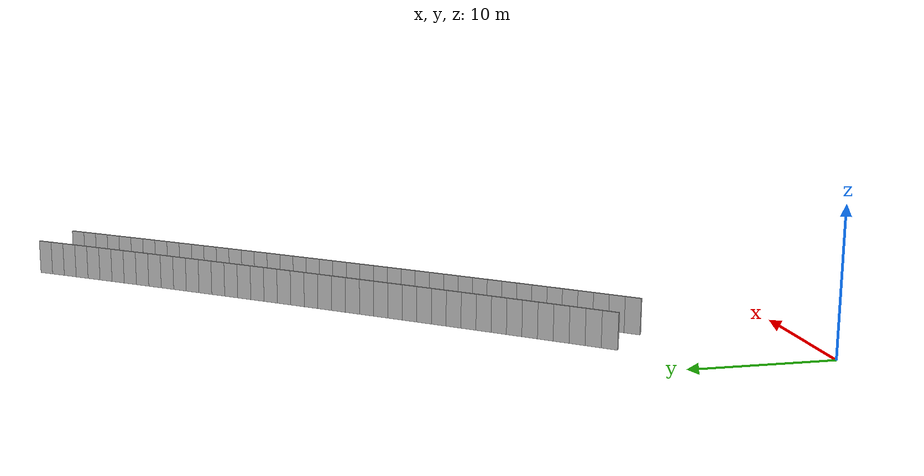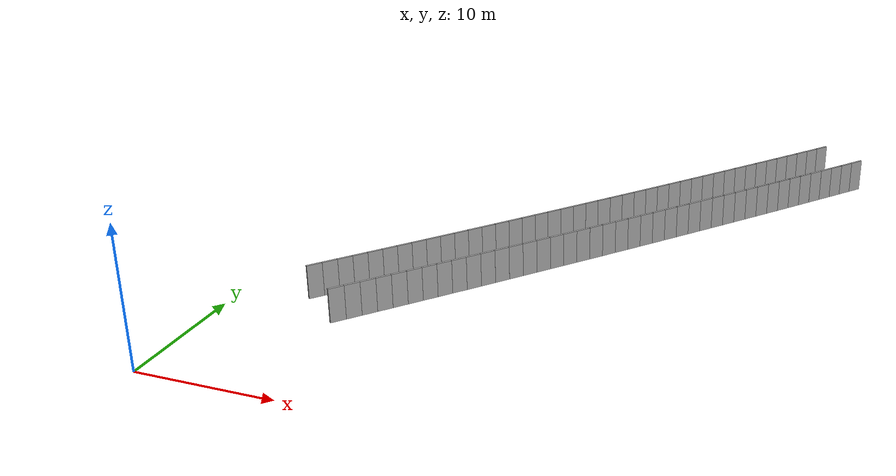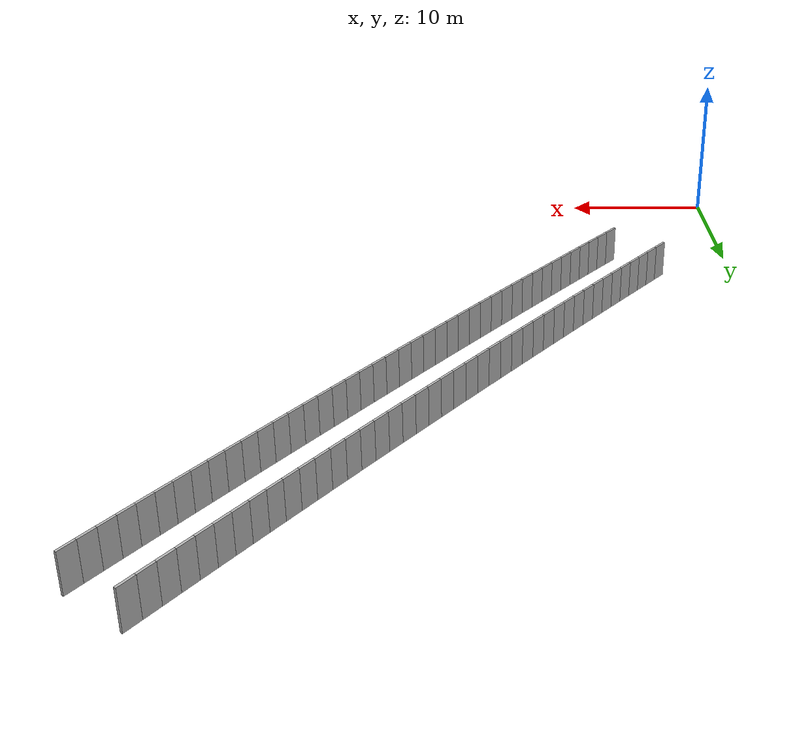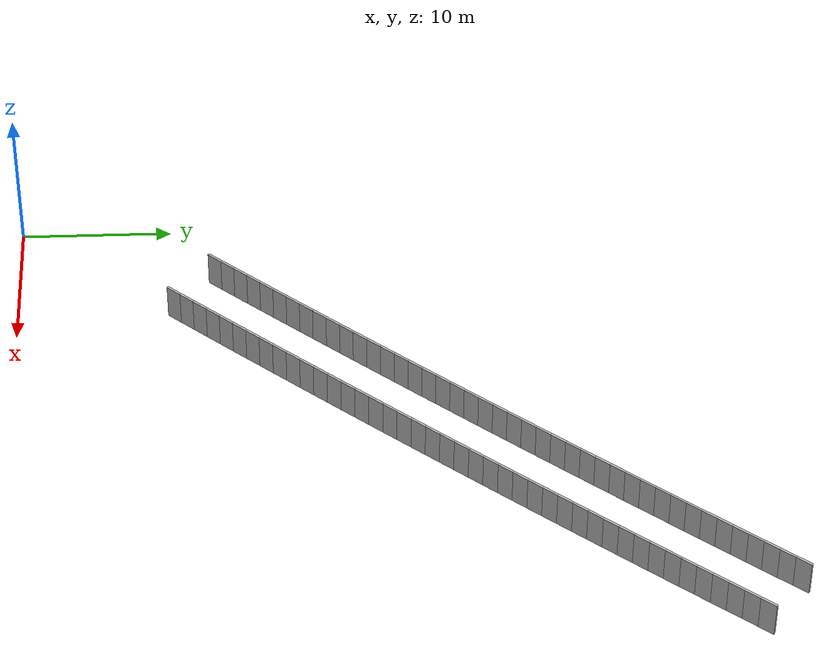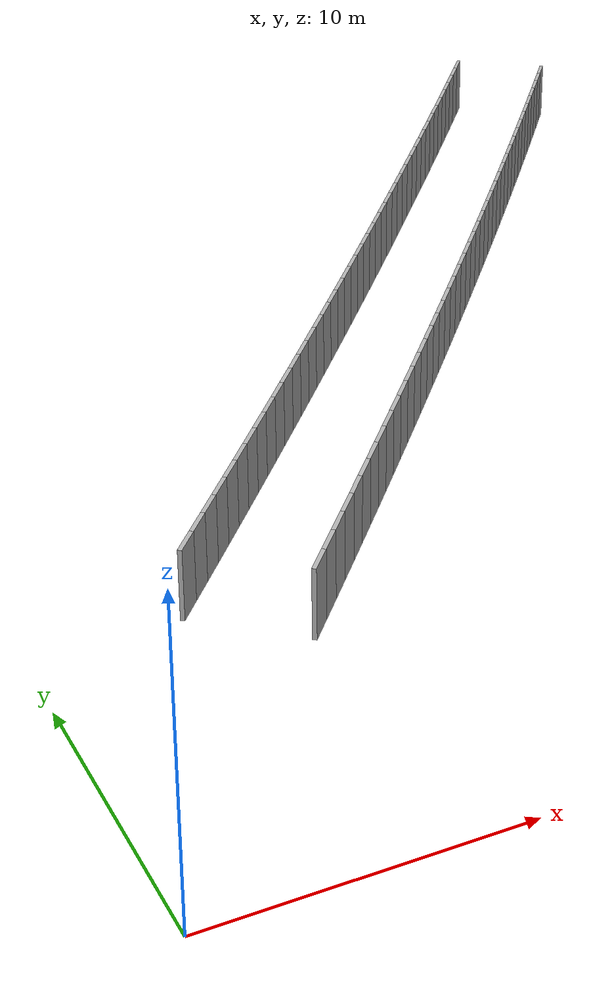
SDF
<?xml version="1.0" ?>
<sdf version="1.6">
  <model name="sps_4212">
    <pose frame="">0 0 0 0 -0 0</pose>
    <static>1</static>
    <self_collide>0</self_collide>
    <allow_auto_disable>0</allow_auto_disable>
    <link name="Wall7227">
      <kinematic>0</kinematic>
      <gravity>1</gravity>
      <self_collide>0</self_collide>
      <collision name="collision">
        <geometry>
          <box>
            <size>1.12621 0.15 2.5</size>
          </box>
        </geometry>
        <pose frame="">0 0 0 0 -0 0</pose>
      </collision>
      <visual name="visual">
        <geometry>
          <box>
            <size>1.12621 0.15 2.5</size>
          </box>
        </geometry>
        <pose frame="">0 0 0 0 -0 0</pose>
        <cast_shadows>1</cast_shadows>
        <transparency>0.0</transparency>
      </visual>
      <pose frame="">8.50967 10.4473 1.25 0 -0 0.868883</pose>
    </link>
    <link name="Wall7228">
      <kinematic>0</kinematic>
      <gravity>1</gravity>
      <self_collide>0</self_collide>
      <collision name="collision">
        <geometry>
          <box>
            <size>1.12638 0.15 2.5</size>
          </box>
        </geometry>
        <pose frame="">0 0 0 0 -0 0</pose>
      </collision>
      <visual name="visual">
        <geometry>
          <box>
            <size>1.12638 0.15 2.5</size>
          </box>
        </geometry>
        <pose frame="">0 0 0 0 -0 0</pose>
        <cast_shadows>1</cast_shadows>
        <transparency>0.0</transparency>
      </visual>
      <pose frame="">9.23635 11.3078 1.25 0 -0 0.87014</pose>
    </link>
    <link name="Wall7229">
      <kinematic>0</kinematic>
      <gravity>1</gravity>
      <self_collide>0</self_collide>
      <collision name="collision">
        <geometry>
          <box>
            <size>1.12635 0.15 2.5</size>
          </box>
        </geometry>
        <pose frame="">0 0 0 0 -0 0</pose>
      </collision>
      <visual name="visual">
        <geometry>
          <box>
            <size>1.12635 0.15 2.5</size>
          </box>
        </geometry>
        <pose frame="">0 0 0 0 -0 0</pose>
        <cast_shadows>1</cast_shadows>
        <transparency>0.0</transparency>
      </visual>
      <pose frame="">9.96206 12.1692 1.25 0 -0 0.871257</pose>
    </link>
    <link name="Wall7230">
      <kinematic>0</kinematic>
      <gravity>1</gravity>
      <self_collide>0</self_collide>
      <collision name="collision">
        <geometry>
          <box>
            <size>1.12629 0.15 2.5</size>
          </box>
        </geometry>
        <pose frame="">0 0 0 0 -0 0</pose>
      </collision>
      <visual name="visual">
        <geometry>
          <box>
            <size>1.12629 0.15 2.5</size>
          </box>
        </geometry>
        <pose frame="">0 0 0 0 -0 0</pose>
        <cast_shadows>1</cast_shadows>
        <transparency>0.0</transparency>
      </visual>
      <pose frame="">10.6868 13.0314 1.25 0 -0 0.872415</pose>
    </link>
    <link name="Wall7231">
      <kinematic>0</kinematic>
      <gravity>1</gravity>
      <self_collide>0</self_collide>
      <collision name="collision">
        <geometry>
          <box>
            <size>1.1263 0.15 2.5</size>
          </box>
        </geometry>
        <pose frame="">0 0 0 0 -0 0</pose>
      </collision>
      <visual name="visual">
        <geometry>
          <box>
            <size>1.1263 0.15 2.5</size>
          </box>
        </geometry>
        <pose frame="">0 0 0 0 -0 0</pose>
        <cast_shadows>1</cast_shadows>
        <transparency>0.0</transparency>
      </visual>
      <pose frame="">11.4104 13.8945 1.25 0 -0 0.873761</pose>
    </link>
    <link name="Wall7232">
      <kinematic>0</kinematic>
      <gravity>1</gravity>
      <self_collide>0</self_collide>
      <collision name="collision">
        <geometry>
          <box>
            <size>1.12665 0.15 2.5</size>
          </box>
        </geometry>
        <pose frame="">0 0 0 0 -0 0</pose>
      </collision>
      <visual name="visual">
        <geometry>
          <box>
            <size>1.12665 0.15 2.5</size>
          </box>
        </geometry>
        <pose frame="">0 0 0 0 -0 0</pose>
        <cast_shadows>1</cast_shadows>
        <transparency>0.0</transparency>
      </visual>
      <pose frame="">12.1331 14.7586 1.25 0 -0 0.874733</pose>
    </link>
    <link name="Wall7233">
      <kinematic>0</kinematic>
      <gravity>1</gravity>
      <self_collide>0</self_collide>
      <collision name="collision">
        <geometry>
          <box>
            <size>1.12637 0.15 2.5</size>
          </box>
        </geometry>
        <pose frame="">0 0 0 0 -0 0</pose>
      </collision>
      <visual name="visual">
        <geometry>
          <box>
            <size>1.12637 0.15 2.5</size>
          </box>
        </geometry>
        <pose frame="">0 0 0 0 -0 0</pose>
        <cast_shadows>1</cast_shadows>
        <transparency>0.0</transparency>
      </visual>
      <pose frame="">12.8548 15.6236 1.25 0 -0 0.876218</pose>
    </link>
    <link name="Wall7234">
      <kinematic>0</kinematic>
      <gravity>1</gravity>
      <self_collide>0</self_collide>
      <collision name="collision">
        <geometry>
          <box>
            <size>1.12625 0.15 2.5</size>
          </box>
        </geometry>
        <pose frame="">0 0 0 0 -0 0</pose>
      </collision>
      <visual name="visual">
        <geometry>
          <box>
            <size>1.12625 0.15 2.5</size>
          </box>
        </geometry>
        <pose frame="">0 0 0 0 -0 0</pose>
        <cast_shadows>1</cast_shadows>
        <transparency>0.0</transparency>
      </visual>
      <pose frame="">13.5752 16.4893 1.25 0 -0 0.877189</pose>
    </link>
    <link name="Wall7235">
      <kinematic>0</kinematic>
      <gravity>1</gravity>
      <self_collide>0</self_collide>
      <collision name="collision">
        <geometry>
          <box>
            <size>1.12623 0.15 2.5</size>
          </box>
        </geometry>
        <pose frame="">0 0 0 0 -0 0</pose>
      </collision>
      <visual name="visual">
        <geometry>
          <box>
            <size>1.12623 0.15 2.5</size>
          </box>
        </geometry>
        <pose frame="">0 0 0 0 -0 0</pose>
        <cast_shadows>1</cast_shadows>
        <transparency>0.0</transparency>
      </visual>
      <pose frame="">14.2947 17.3558 1.25 0 -0 0.878577</pose>
    </link>
    <link name="Wall7236">
      <kinematic>0</kinematic>
      <gravity>1</gravity>
      <self_collide>0</self_collide>
      <collision name="collision">
        <geometry>
          <box>
            <size>1.12629 0.15 2.5</size>
          </box>
        </geometry>
        <pose frame="">0 0 0 0 -0 0</pose>
      </collision>
      <visual name="visual">
        <geometry>
          <box>
            <size>1.12629 0.15 2.5</size>
          </box>
        </geometry>
        <pose frame="">0 0 0 0 -0 0</pose>
        <cast_shadows>1</cast_shadows>
        <transparency>0.0</transparency>
      </visual>
      <pose frame="">15.0131 18.2232 1.25 0 -0 0.879611</pose>
    </link>
    <link name="Wall7237">
      <kinematic>0</kinematic>
      <gravity>1</gravity>
      <self_collide>0</self_collide>
      <collision name="collision">
        <geometry>
          <box>
            <size>1.12631 0.15 2.5</size>
          </box>
        </geometry>
        <pose frame="">0 0 0 0 -0 0</pose>
      </collision>
      <visual name="visual">
        <geometry>
          <box>
            <size>1.12631 0.15 2.5</size>
          </box>
        </geometry>
        <pose frame="">0 0 0 0 -0 0</pose>
        <cast_shadows>1</cast_shadows>
        <transparency>0.0</transparency>
      </visual>
      <pose frame="">15.7304 19.0915 1.25 0 -0 0.880957</pose>
    </link>
    <link name="Wall7238">
      <kinematic>0</kinematic>
      <gravity>1</gravity>
      <self_collide>0</self_collide>
      <collision name="collision">
        <geometry>
          <box>
            <size>1.12646 0.15 2.5</size>
          </box>
        </geometry>
        <pose frame="">0 0 0 0 -0 0</pose>
      </collision>
      <visual name="visual">
        <geometry>
          <box>
            <size>1.12646 0.15 2.5</size>
          </box>
        </geometry>
        <pose frame="">0 0 0 0 -0 0</pose>
        <cast_shadows>1</cast_shadows>
        <transparency>0.0</transparency>
      </visual>
      <pose frame="">16.4468 19.9607 1.25 0 -0 0.881983</pose>
    </link>
    <link name="Wall7239">
      <kinematic>0</kinematic>
      <gravity>1</gravity>
      <self_collide>0</self_collide>
      <collision name="collision">
        <geometry>
          <box>
            <size>1.12615 0.15 2.5</size>
          </box>
        </geometry>
        <pose frame="">0 0 0 0 -0 0</pose>
      </collision>
      <visual name="visual">
        <geometry>
          <box>
            <size>1.12615 0.15 2.5</size>
          </box>
        </geometry>
        <pose frame="">0 0 0 0 -0 0</pose>
        <cast_shadows>1</cast_shadows>
        <transparency>0.0</transparency>
      </visual>
      <pose frame="">17.1623 20.8306 1.25 0 -0 0.883088</pose>
    </link>
    <link name="Wall7240">
      <kinematic>0</kinematic>
      <gravity>1</gravity>
      <self_collide>0</self_collide>
      <collision name="collision">
        <geometry>
          <box>
            <size>1.12629 0.15 2.5</size>
          </box>
        </geometry>
        <pose frame="">0 0 0 0 -0 0</pose>
      </collision>
      <visual name="visual">
        <geometry>
          <box>
            <size>1.12629 0.15 2.5</size>
          </box>
        </geometry>
        <pose frame="">0 0 0 0 -0 0</pose>
        <cast_shadows>1</cast_shadows>
        <transparency>0.0</transparency>
      </visual>
      <pose frame="">17.8766 21.7013 1.25 0 -0 0.884384</pose>
    </link>
    <link name="Wall7241">
      <kinematic>0</kinematic>
      <gravity>1</gravity>
      <self_collide>0</self_collide>
      <collision name="collision">
        <geometry>
          <box>
            <size>1.12639 0.15 2.5</size>
          </box>
        </geometry>
        <pose frame="">0 0 0 0 -0 0</pose>
      </collision>
      <visual name="visual">
        <geometry>
          <box>
            <size>1.12639 0.15 2.5</size>
          </box>
        </geometry>
        <pose frame="">0 0 0 0 -0 0</pose>
        <cast_shadows>1</cast_shadows>
        <transparency>0.0</transparency>
      </visual>
      <pose frame="">18.5899 22.573 1.25 0 -0 0.885646</pose>
    </link>
    <link name="Wall7242">
      <kinematic>0</kinematic>
      <gravity>1</gravity>
      <self_collide>0</self_collide>
      <collision name="collision">
        <geometry>
          <box>
            <size>1.12627 0.15 2.5</size>
          </box>
        </geometry>
        <pose frame="">0 0 0 0 -0 0</pose>
      </collision>
      <visual name="visual">
        <geometry>
          <box>
            <size>1.12627 0.15 2.5</size>
          </box>
        </geometry>
        <pose frame="">0 0 0 0 -0 0</pose>
        <cast_shadows>1</cast_shadows>
        <transparency>0.0</transparency>
      </visual>
      <pose frame="">19.3021 23.4456 1.25 0 -0 0.886889</pose>
    </link>
    <link name="Wall7243">
      <kinematic>0</kinematic>
      <gravity>1</gravity>
      <self_collide>0</self_collide>
      <collision name="collision">
        <geometry>
          <box>
            <size>1.12623 0.15 2.5</size>
          </box>
        </geometry>
        <pose frame="">0 0 0 0 -0 0</pose>
      </collision>
      <visual name="visual">
        <geometry>
          <box>
            <size>1.12623 0.15 2.5</size>
          </box>
        </geometry>
        <pose frame="">0 0 0 0 -0 0</pose>
        <cast_shadows>1</cast_shadows>
        <transparency>0.0</transparency>
      </visual>
      <pose frame="">20.0131 24.319 1.25 0 -0 0.888049</pose>
    </link>
    <link name="Wall7244">
      <kinematic>0</kinematic>
      <gravity>1</gravity>
      <self_collide>0</self_collide>
      <collision name="collision">
        <geometry>
          <box>
            <size>1.12632 0.15 2.5</size>
          </box>
        </geometry>
        <pose frame="">0 0 0 0 -0 0</pose>
      </collision>
      <visual name="visual">
        <geometry>
          <box>
            <size>1.12632 0.15 2.5</size>
          </box>
        </geometry>
        <pose frame="">0 0 0 0 -0 0</pose>
        <cast_shadows>1</cast_shadows>
        <transparency>0.0</transparency>
      </visual>
      <pose frame="">20.7233 25.1932 1.25 0 -0 0.889158</pose>
    </link>
    <link name="Wall7245">
      <kinematic>0</kinematic>
      <gravity>1</gravity>
      <self_collide>0</self_collide>
      <collision name="collision">
        <geometry>
          <box>
            <size>1.12568 0.15 2.5</size>
          </box>
        </geometry>
        <pose frame="">0 0 0 0 -0 0</pose>
      </collision>
      <visual name="visual">
        <geometry>
          <box>
            <size>1.12568 0.15 2.5</size>
          </box>
        </geometry>
        <pose frame="">0 0 0 0 -0 0</pose>
        <cast_shadows>1</cast_shadows>
        <transparency>0.0</transparency>
      </visual>
      <pose frame="">21.4322 26.068 1.25 0 -0 0.890373</pose>
    </link>
    <link name="Wall7246">
      <kinematic>0</kinematic>
      <gravity>1</gravity>
      <self_collide>0</self_collide>
      <collision name="collision">
        <geometry>
          <box>
            <size>1.12639 0.15 2.5</size>
          </box>
        </geometry>
        <pose frame="">0 0 0 0 -0 0</pose>
      </collision>
      <visual name="visual">
        <geometry>
          <box>
            <size>1.12639 0.15 2.5</size>
          </box>
        </geometry>
        <pose frame="">0 0 0 0 -0 0</pose>
        <cast_shadows>1</cast_shadows>
        <transparency>0.0</transparency>
      </visual>
      <pose frame="">22.1401 26.9437 1.25 0 -0 0.891579</pose>
    </link>
    <link name="Wall7247">
      <kinematic>0</kinematic>
      <gravity>1</gravity>
      <self_collide>0</self_collide>
      <collision name="collision">
        <geometry>
          <box>
            <size>1.12609 0.15 2.5</size>
          </box>
        </geometry>
        <pose frame="">0 0 0 0 -0 0</pose>
      </collision>
      <visual name="visual">
        <geometry>
          <box>
            <size>1.12609 0.15 2.5</size>
          </box>
        </geometry>
        <pose frame="">0 0 0 0 -0 0</pose>
        <cast_shadows>1</cast_shadows>
        <transparency>0.0</transparency>
      </visual>
      <pose frame="">22.8471 27.8204 1.25 0 -0 0.892686</pose>
    </link>
    <link name="Wall7248">
      <kinematic>0</kinematic>
      <gravity>1</gravity>
      <self_collide>0</self_collide>
      <collision name="collision">
        <geometry>
          <box>
            <size>1.12641 0.15 2.5</size>
          </box>
        </geometry>
        <pose frame="">0 0 0 0 -0 0</pose>
      </collision>
      <visual name="visual">
        <geometry>
          <box>
            <size>1.12641 0.15 2.5</size>
          </box>
        </geometry>
        <pose frame="">0 0 0 0 -0 0</pose>
        <cast_shadows>1</cast_shadows>
        <transparency>0.0</transparency>
      </visual>
      <pose frame="">23.5531 28.6979 1.25 0 -0 0.893889</pose>
    </link>
    <link name="Wall7249">
      <kinematic>0</kinematic>
      <gravity>1</gravity>
      <self_collide>0</self_collide>
      <collision name="collision">
        <geometry>
          <box>
            <size>1.12626 0.15 2.5</size>
          </box>
        </geometry>
        <pose frame="">0 0 0 0 -0 0</pose>
      </collision>
      <visual name="visual">
        <geometry>
          <box>
            <size>1.12626 0.15 2.5</size>
          </box>
        </geometry>
        <pose frame="">0 0 0 0 -0 0</pose>
        <cast_shadows>1</cast_shadows>
        <transparency>0.0</transparency>
      </visual>
      <pose frame="">24.258 29.5763 1.25 0 -0 0.895099</pose>
    </link>
    <link name="Wall7250">
      <kinematic>0</kinematic>
      <gravity>1</gravity>
      <self_collide>0</self_collide>
      <collision name="collision">
        <geometry>
          <box>
            <size>1.12626 0.15 2.5</size>
          </box>
        </geometry>
        <pose frame="">0 0 0 0 -0 0</pose>
      </collision>
      <visual name="visual">
        <geometry>
          <box>
            <size>1.12626 0.15 2.5</size>
          </box>
        </geometry>
        <pose frame="">0 0 0 0 -0 0</pose>
        <cast_shadows>1</cast_shadows>
        <transparency>0.0</transparency>
      </visual>
      <pose frame="">24.962 30.4555 1.25 0 -0 0.896216</pose>
    </link>
    <link name="Wall7251">
      <kinematic>0</kinematic>
      <gravity>1</gravity>
      <self_collide>0</self_collide>
      <collision name="collision">
        <geometry>
          <box>
            <size>1.12628 0.15 2.5</size>
          </box>
        </geometry>
        <pose frame="">0 0 0 0 -0 0</pose>
      </collision>
      <visual name="visual">
        <geometry>
          <box>
            <size>1.12628 0.15 2.5</size>
          </box>
        </geometry>
        <pose frame="">0 0 0 0 -0 0</pose>
        <cast_shadows>1</cast_shadows>
        <transparency>0.0</transparency>
      </visual>
      <pose frame="">25.6648 31.3356 1.25 0 -0 0.89768</pose>
    </link>
    <link name="Wall7252">
      <kinematic>0</kinematic>
      <gravity>1</gravity>
      <self_collide>0</self_collide>
      <collision name="collision">
        <geometry>
          <box>
            <size>1.1263 0.15 2.5</size>
          </box>
        </geometry>
        <pose frame="">0 0 0 0 -0 0</pose>
      </collision>
      <visual name="visual">
        <geometry>
          <box>
            <size>1.1263 0.15 2.5</size>
          </box>
        </geometry>
        <pose frame="">0 0 0 0 -0 0</pose>
        <cast_shadows>1</cast_shadows>
        <transparency>0.0</transparency>
      </visual>
      <pose frame="">26.3665 32.2165 1.25 0 -0 0.898527</pose>
    </link>
    <link name="Wall7253">
      <kinematic>0</kinematic>
      <gravity>1</gravity>
      <self_collide>0</self_collide>
      <collision name="collision">
        <geometry>
          <box>
            <size>1.1263 0.15 2.5</size>
          </box>
        </geometry>
        <pose frame="">0 0 0 0 -0 0</pose>
      </collision>
      <visual name="visual">
        <geometry>
          <box>
            <size>1.1263 0.15 2.5</size>
          </box>
        </geometry>
        <pose frame="">0 0 0 0 -0 0</pose>
        <cast_shadows>1</cast_shadows>
        <transparency>0.0</transparency>
      </visual>
      <pose frame="">27.0673 33.0982 1.25 0 -0 0.899915</pose>
    </link>
    <link name="Wall7254">
      <kinematic>0</kinematic>
      <gravity>1</gravity>
      <self_collide>0</self_collide>
      <collision name="collision">
        <geometry>
          <box>
            <size>1.12643 0.15 2.5</size>
          </box>
        </geometry>
        <pose frame="">0 0 0 0 -0 0</pose>
      </collision>
      <visual name="visual">
        <geometry>
          <box>
            <size>1.12643 0.15 2.5</size>
          </box>
        </geometry>
        <pose frame="">0 0 0 0 -0 0</pose>
        <cast_shadows>1</cast_shadows>
        <transparency>0.0</transparency>
      </visual>
      <pose frame="">27.7671 33.9808 1.25 0 -0 0.900904</pose>
    </link>
    <link name="Wall7255">
      <kinematic>0</kinematic>
      <gravity>1</gravity>
      <self_collide>0</self_collide>
      <collision name="collision">
        <geometry>
          <box>
            <size>1.12633 0.15 2.5</size>
          </box>
        </geometry>
        <pose frame="">0 0 0 0 -0 0</pose>
      </collision>
      <visual name="visual">
        <geometry>
          <box>
            <size>1.12633 0.15 2.5</size>
          </box>
        </geometry>
        <pose frame="">0 0 0 0 -0 0</pose>
        <cast_shadows>1</cast_shadows>
        <transparency>0.0</transparency>
      </visual>
      <pose frame="">28.466 34.8642 1.25 0 -0 0.902149</pose>
    </link>
    <link name="Wall7256">
      <kinematic>0</kinematic>
      <gravity>1</gravity>
      <self_collide>0</self_collide>
      <collision name="collision">
        <geometry>
          <box>
            <size>1.12627 0.15 2.5</size>
          </box>
        </geometry>
        <pose frame="">0 0 0 0 -0 0</pose>
      </collision>
      <visual name="visual">
        <geometry>
          <box>
            <size>1.12627 0.15 2.5</size>
          </box>
        </geometry>
        <pose frame="">0 0 0 0 -0 0</pose>
        <cast_shadows>1</cast_shadows>
        <transparency>0.0</transparency>
      </visual>
      <pose frame="">29.1637 35.7484 1.25 0 -0 0.903351</pose>
    </link>
    <link name="Wall7257">
      <kinematic>0</kinematic>
      <gravity>1</gravity>
      <self_collide>0</self_collide>
      <collision name="collision">
        <geometry>
          <box>
            <size>1.12607 0.15 2.5</size>
          </box>
        </geometry>
        <pose frame="">0 0 0 0 -0 0</pose>
      </collision>
      <visual name="visual">
        <geometry>
          <box>
            <size>1.12607 0.15 2.5</size>
          </box>
        </geometry>
        <pose frame="">0 0 0 0 -0 0</pose>
        <cast_shadows>1</cast_shadows>
        <transparency>0.0</transparency>
      </visual>
      <pose frame="">29.8601 36.6334 1.25 0 -0 0.904724</pose>
    </link>
    <link name="Wall7258">
      <kinematic>0</kinematic>
      <gravity>1</gravity>
      <self_collide>0</self_collide>
      <collision name="collision">
        <geometry>
          <box>
            <size>1.12639 0.15 2.5</size>
          </box>
        </geometry>
        <pose frame="">0 0 0 0 -0 0</pose>
      </collision>
      <visual name="visual">
        <geometry>
          <box>
            <size>1.12639 0.15 2.5</size>
          </box>
        </geometry>
        <pose frame="">0 0 0 0 -0 0</pose>
        <cast_shadows>1</cast_shadows>
        <transparency>0.0</transparency>
      </visual>
      <pose frame="">30.5555 37.5193 1.25 0 -0 0.905847</pose>
    </link>
    <link name="Wall7259">
      <kinematic>0</kinematic>
      <gravity>1</gravity>
      <self_collide>0</self_collide>
      <collision name="collision">
        <geometry>
          <box>
            <size>1.12627 0.15 2.5</size>
          </box>
        </geometry>
        <pose frame="">0 0 0 0 -0 0</pose>
      </collision>
      <visual name="visual">
        <geometry>
          <box>
            <size>1.12627 0.15 2.5</size>
          </box>
        </geometry>
        <pose frame="">0 0 0 0 -0 0</pose>
        <cast_shadows>1</cast_shadows>
        <transparency>0.0</transparency>
      </visual>
      <pose frame="">31.2501 38.406 1.25 0 -0 0.906863</pose>
    </link>
    <link name="Wall7260">
      <kinematic>0</kinematic>
      <gravity>1</gravity>
      <self_collide>0</self_collide>
      <collision name="collision">
        <geometry>
          <box>
            <size>1.12629 0.15 2.5</size>
          </box>
        </geometry>
        <pose frame="">0 0 0 0 -0 0</pose>
      </collision>
      <visual name="visual">
        <geometry>
          <box>
            <size>1.12629 0.15 2.5</size>
          </box>
        </geometry>
        <pose frame="">0 0 0 0 -0 0</pose>
        <cast_shadows>1</cast_shadows>
        <transparency>0.0</transparency>
      </visual>
      <pose frame="">31.9435 39.2935 1.25 0 -0 0.908251</pose>
    </link>
    <link name="Wall7261">
      <kinematic>0</kinematic>
      <gravity>1</gravity>
      <self_collide>0</self_collide>
      <collision name="collision">
        <geometry>
          <box>
            <size>1.12639 0.15 2.5</size>
          </box>
        </geometry>
        <pose frame="">0 0 0 0 -0 0</pose>
      </collision>
      <visual name="visual">
        <geometry>
          <box>
            <size>1.12639 0.15 2.5</size>
          </box>
        </geometry>
        <pose frame="">0 0 0 0 -0 0</pose>
        <cast_shadows>1</cast_shadows>
        <transparency>0.0</transparency>
      </visual>
      <pose frame="">32.6359 40.1819 1.25 0 -0 0.909283</pose>
    </link>
    <link name="Wall7262">
      <kinematic>0</kinematic>
      <gravity>1</gravity>
      <self_collide>0</self_collide>
      <collision name="collision">
        <geometry>
          <box>
            <size>1.12631 0.15 2.5</size>
          </box>
        </geometry>
        <pose frame="">0 0 0 0 -0 0</pose>
      </collision>
      <visual name="visual">
        <geometry>
          <box>
            <size>1.12631 0.15 2.5</size>
          </box>
        </geometry>
        <pose frame="">0 0 0 0 -0 0</pose>
        <cast_shadows>1</cast_shadows>
        <transparency>0.0</transparency>
      </visual>
      <pose frame="">33.3272 41.0711 1.25 0 -0 0.910528</pose>
    </link>
    <link name="Wall7263">
      <kinematic>0</kinematic>
      <gravity>1</gravity>
      <self_collide>0</self_collide>
      <collision name="collision">
        <geometry>
          <box>
            <size>1.12633 0.15 2.5</size>
          </box>
        </geometry>
        <pose frame="">0 0 0 0 -0 0</pose>
      </collision>
      <visual name="visual">
        <geometry>
          <box>
            <size>1.12633 0.15 2.5</size>
          </box>
        </geometry>
        <pose frame="">0 0 0 0 -0 0</pose>
        <cast_shadows>1</cast_shadows>
        <transparency>0.0</transparency>
      </visual>
      <pose frame="">34.0175 41.9611 1.25 0 -0 0.911645</pose>
    </link>
    <link name="Wall7264">
      <kinematic>0</kinematic>
      <gravity>1</gravity>
      <self_collide>0</self_collide>
      <collision name="collision">
        <geometry>
          <box>
            <size>1.12626 0.15 2.5</size>
          </box>
        </geometry>
        <pose frame="">0 0 0 0 -0 0</pose>
      </collision>
      <visual name="visual">
        <geometry>
          <box>
            <size>1.12626 0.15 2.5</size>
          </box>
        </geometry>
        <pose frame="">0 0 0 0 -0 0</pose>
        <cast_shadows>1</cast_shadows>
        <transparency>0.0</transparency>
      </visual>
      <pose frame="">34.7067 42.8519 1.25 0 -0 0.912966</pose>
    </link>
    <link name="Wall7265">
      <kinematic>0</kinematic>
      <gravity>1</gravity>
      <self_collide>0</self_collide>
      <collision name="collision">
        <geometry>
          <box>
            <size>1.12681 0.15 2.5</size>
          </box>
        </geometry>
        <pose frame="">0 0 0 0 -0 0</pose>
      </collision>
      <visual name="visual">
        <geometry>
          <box>
            <size>1.12681 0.15 2.5</size>
          </box>
        </geometry>
        <pose frame="">0 0 0 0 -0 0</pose>
        <cast_shadows>1</cast_shadows>
        <transparency>0.0</transparency>
      </visual>
      <pose frame="">35.395 43.7437 1.25 0 -0 0.914024</pose>
    </link>
    <link name="Wall7266">
      <kinematic>0</kinematic>
      <gravity>1</gravity>
      <self_collide>0</self_collide>
      <collision name="collision">
        <geometry>
          <box>
            <size>1.12618 0.15 2.5</size>
          </box>
        </geometry>
        <pose frame="">0 0 0 0 -0 0</pose>
      </collision>
      <visual name="visual">
        <geometry>
          <box>
            <size>1.12618 0.15 2.5</size>
          </box>
        </geometry>
        <pose frame="">0 0 0 0 -0 0</pose>
        <cast_shadows>1</cast_shadows>
        <transparency>0.0</transparency>
      </visual>
      <pose frame="">36.0822 44.6363 1.25 0 -0 0.915372</pose>
    </link>
    <link name="Wall7267">
      <kinematic>0</kinematic>
      <gravity>1</gravity>
      <self_collide>0</self_collide>
      <collision name="collision">
        <geometry>
          <box>
            <size>1.12628 0.15 2.5</size>
          </box>
        </geometry>
        <pose frame="">0 0 0 0 -0 0</pose>
      </collision>
      <visual name="visual">
        <geometry>
          <box>
            <size>1.12628 0.15 2.5</size>
          </box>
        </geometry>
        <pose frame="">0 0 0 0 -0 0</pose>
        <cast_shadows>1</cast_shadows>
        <transparency>0.0</transparency>
      </visual>
      <pose frame="">36.7682 45.5295 1.25 0 -0 0.916327</pose>
    </link>
    <link name="Wall7268">
      <kinematic>0</kinematic>
      <gravity>1</gravity>
      <self_collide>0</self_collide>
      <collision name="collision">
        <geometry>
          <box>
            <size>1.12636 0.15 2.5</size>
          </box>
        </geometry>
        <pose frame="">0 0 0 0 -0 0</pose>
      </collision>
      <visual name="visual">
        <geometry>
          <box>
            <size>1.12636 0.15 2.5</size>
          </box>
        </geometry>
        <pose frame="">0 0 0 0 -0 0</pose>
        <cast_shadows>1</cast_shadows>
        <transparency>0.0</transparency>
      </visual>
      <pose frame="">37.4534 46.4235 1.25 0 -0 0.917476</pose>
    </link>
    <link name="Wall10128">
      <kinematic>0</kinematic>
      <gravity>1</gravity>
      <self_collide>0</self_collide>
      <collision name="collision">
        <geometry>
          <box>
            <size>1.12172 0.15 2.5</size>
          </box>
        </geometry>
        <pose frame="">0 0 0 0 -0 0</pose>
      </collision>
      <visual name="visual">
        <geometry>
          <box>
            <size>1.12172 0.15 2.5</size>
          </box>
        </geometry>
        <pose frame="">0 0 0 0 -0 0</pose>
        <cast_shadows>1</cast_shadows>
        <transparency>0.0</transparency>
      </visual>
      <pose frame="">5.34936 13.1214 1.25 0 -0 0.868987</pose>
    </link>
    <link name="Wall10129">
      <kinematic>0</kinematic>
      <gravity>1</gravity>
      <self_collide>0</self_collide>
      <collision name="collision">
        <geometry>
          <box>
            <size>1.12158 0.15 2.5</size>
          </box>
        </geometry>
        <pose frame="">0 0 0 0 -0 0</pose>
      </collision>
      <visual name="visual">
        <geometry>
          <box>
            <size>1.12158 0.15 2.5</size>
          </box>
        </geometry>
        <pose frame="">0 0 0 0 -0 0</pose>
        <cast_shadows>1</cast_shadows>
        <transparency>0.0</transparency>
      </visual>
      <pose frame="">6.07296 13.9784 1.25 0 -0 0.870233</pose>
    </link>
    <link name="Wall10130">
      <kinematic>0</kinematic>
      <gravity>1</gravity>
      <self_collide>0</self_collide>
      <collision name="collision">
        <geometry>
          <box>
            <size>1.12147 0.15 2.5</size>
          </box>
        </geometry>
        <pose frame="">0 0 0 0 -0 0</pose>
      </collision>
      <visual name="visual">
        <geometry>
          <box>
            <size>1.12147 0.15 2.5</size>
          </box>
        </geometry>
        <pose frame="">0 0 0 0 -0 0</pose>
        <cast_shadows>1</cast_shadows>
        <transparency>0.0</transparency>
      </visual>
      <pose frame="">6.79546 14.8362 1.25 0 -0 0.871361</pose>
    </link>
    <link name="Wall10131">
      <kinematic>0</kinematic>
      <gravity>1</gravity>
      <self_collide>0</self_collide>
      <collision name="collision">
        <geometry>
          <box>
            <size>1.12124 0.15 2.5</size>
          </box>
        </geometry>
        <pose frame="">0 0 0 0 -0 0</pose>
      </collision>
      <visual name="visual">
        <geometry>
          <box>
            <size>1.12124 0.15 2.5</size>
          </box>
        </geometry>
        <pose frame="">0 0 0 0 -0 0</pose>
        <cast_shadows>1</cast_shadows>
        <transparency>0.0</transparency>
      </visual>
      <pose frame="">7.51687 15.6947 1.25 0 -0 0.872538</pose>
    </link>
    <link name="Wall10132">
      <kinematic>0</kinematic>
      <gravity>1</gravity>
      <self_collide>0</self_collide>
      <collision name="collision">
        <geometry>
          <box>
            <size>1.1213 0.15 2.5</size>
          </box>
        </geometry>
        <pose frame="">0 0 0 0 -0 0</pose>
      </collision>
      <visual name="visual">
        <geometry>
          <box>
            <size>1.1213 0.15 2.5</size>
          </box>
        </geometry>
        <pose frame="">0 0 0 0 -0 0</pose>
        <cast_shadows>1</cast_shadows>
        <transparency>0.0</transparency>
      </visual>
      <pose frame="">8.23727 16.5539 1.25 0 -0 0.873577</pose>
    </link>
    <link name="Wall10133">
      <kinematic>0</kinematic>
      <gravity>1</gravity>
      <self_collide>0</self_collide>
      <collision name="collision">
        <geometry>
          <box>
            <size>1.1213 0.15 2.5</size>
          </box>
        </geometry>
        <pose frame="">0 0 0 0 -0 0</pose>
      </collision>
      <visual name="visual">
        <geometry>
          <box>
            <size>1.1213 0.15 2.5</size>
          </box>
        </geometry>
        <pose frame="">0 0 0 0 -0 0</pose>
        <cast_shadows>1</cast_shadows>
        <transparency>0.0</transparency>
      </visual>
      <pose frame="">8.95666 17.414 1.25 0 -0 0.874929</pose>
    </link>
    <link name="Wall10134">
      <kinematic>0</kinematic>
      <gravity>1</gravity>
      <self_collide>0</self_collide>
      <collision name="collision">
        <geometry>
          <box>
            <size>1.12124 0.15 2.5</size>
          </box>
        </geometry>
        <pose frame="">0 0 0 0 -0 0</pose>
      </collision>
      <visual name="visual">
        <geometry>
          <box>
            <size>1.12124 0.15 2.5</size>
          </box>
        </geometry>
        <pose frame="">0 0 0 0 -0 0</pose>
        <cast_shadows>1</cast_shadows>
        <transparency>0.0</transparency>
      </visual>
      <pose frame="">9.67495 18.275 1.25 0 -0 0.876093</pose>
    </link>
    <link name="Wall10135">
      <kinematic>0</kinematic>
      <gravity>1</gravity>
      <self_collide>0</self_collide>
      <collision name="collision">
        <geometry>
          <box>
            <size>1.12137 0.15 2.5</size>
          </box>
        </geometry>
        <pose frame="">0 0 0 0 -0 0</pose>
      </collision>
      <visual name="visual">
        <geometry>
          <box>
            <size>1.12137 0.15 2.5</size>
          </box>
        </geometry>
        <pose frame="">0 0 0 0 -0 0</pose>
        <cast_shadows>1</cast_shadows>
        <transparency>0.0</transparency>
      </visual>
      <pose frame="">10.3922 19.1369 1.25 0 -0 0.877319</pose>
    </link>
    <link name="Wall10136">
      <kinematic>0</kinematic>
      <gravity>1</gravity>
      <self_collide>0</self_collide>
      <collision name="collision">
        <geometry>
          <box>
            <size>1.12129 0.15 2.5</size>
          </box>
        </geometry>
        <pose frame="">0 0 0 0 -0 0</pose>
      </collision>
      <visual name="visual">
        <geometry>
          <box>
            <size>1.12129 0.15 2.5</size>
          </box>
        </geometry>
        <pose frame="">0 0 0 0 -0 0</pose>
        <cast_shadows>1</cast_shadows>
        <transparency>0.0</transparency>
      </visual>
      <pose frame="">11.1085 19.9997 1.25 0 -0 0.878602</pose>
    </link>
    <link name="Wall10137">
      <kinematic>0</kinematic>
      <gravity>1</gravity>
      <self_collide>0</self_collide>
      <collision name="collision">
        <geometry>
          <box>
            <size>1.12161 0.15 2.5</size>
          </box>
        </geometry>
        <pose frame="">0 0 0 0 -0 0</pose>
      </collision>
      <visual name="visual">
        <geometry>
          <box>
            <size>1.12161 0.15 2.5</size>
          </box>
        </geometry>
        <pose frame="">0 0 0 0 -0 0</pose>
        <cast_shadows>1</cast_shadows>
        <transparency>0.0</transparency>
      </visual>
      <pose frame="">11.8238 20.8634 1.25 0 -0 0.879618</pose>
    </link>
    <link name="Wall10138">
      <kinematic>0</kinematic>
      <gravity>1</gravity>
      <self_collide>0</self_collide>
      <collision name="collision">
        <geometry>
          <box>
            <size>1.12134 0.15 2.5</size>
          </box>
        </geometry>
        <pose frame="">0 0 0 0 -0 0</pose>
      </collision>
      <visual name="visual">
        <geometry>
          <box>
            <size>1.12134 0.15 2.5</size>
          </box>
        </geometry>
        <pose frame="">0 0 0 0 -0 0</pose>
        <cast_shadows>1</cast_shadows>
        <transparency>0.0</transparency>
      </visual>
      <pose frame="">12.5381 21.7279 1.25 0 -0 0.880762</pose>
    </link>
    <link name="Wall10139">
      <kinematic>0</kinematic>
      <gravity>1</gravity>
      <self_collide>0</self_collide>
      <collision name="collision">
        <geometry>
          <box>
            <size>1.12118 0.15 2.5</size>
          </box>
        </geometry>
        <pose frame="">0 0 0 0 -0 0</pose>
      </collision>
      <visual name="visual">
        <geometry>
          <box>
            <size>1.12118 0.15 2.5</size>
          </box>
        </geometry>
        <pose frame="">0 0 0 0 -0 0</pose>
        <cast_shadows>1</cast_shadows>
        <transparency>0.0</transparency>
      </visual>
      <pose frame="">13.2513 22.5931 1.25 0 -0 0.882052</pose>
    </link>
    <link name="Wall10140">
      <kinematic>0</kinematic>
      <gravity>1</gravity>
      <self_collide>0</self_collide>
      <collision name="collision">
        <geometry>
          <box>
            <size>1.12131 0.15 2.5</size>
          </box>
        </geometry>
        <pose frame="">0 0 0 0 -0 0</pose>
      </collision>
      <visual name="visual">
        <geometry>
          <box>
            <size>1.12131 0.15 2.5</size>
          </box>
        </geometry>
        <pose frame="">0 0 0 0 -0 0</pose>
        <cast_shadows>1</cast_shadows>
        <transparency>0.0</transparency>
      </visual>
      <pose frame="">13.9634 23.4592 1.25 0 -0 0.883278</pose>
    </link>
    <link name="Wall10141">
      <kinematic>0</kinematic>
      <gravity>1</gravity>
      <self_collide>0</self_collide>
      <collision name="collision">
        <geometry>
          <box>
            <size>1.12121 0.15 2.5</size>
          </box>
        </geometry>
        <pose frame="">0 0 0 0 -0 0</pose>
      </collision>
      <visual name="visual">
        <geometry>
          <box>
            <size>1.12121 0.15 2.5</size>
          </box>
        </geometry>
        <pose frame="">0 0 0 0 -0 0</pose>
        <cast_shadows>1</cast_shadows>
        <transparency>0.0</transparency>
      </visual>
      <pose frame="">14.6746 24.3261 1.25 0 -0 0.884331</pose>
    </link>
    <link name="Wall10142">
      <kinematic>0</kinematic>
      <gravity>1</gravity>
      <self_collide>0</self_collide>
      <collision name="collision">
        <geometry>
          <box>
            <size>1.12126 0.15 2.5</size>
          </box>
        </geometry>
        <pose frame="">0 0 0 0 -0 0</pose>
      </collision>
      <visual name="visual">
        <geometry>
          <box>
            <size>1.12126 0.15 2.5</size>
          </box>
        </geometry>
        <pose frame="">0 0 0 0 -0 0</pose>
        <cast_shadows>1</cast_shadows>
        <transparency>0.0</transparency>
      </visual>
      <pose frame="">15.3847 25.1938 1.25 0 -0 0.885565</pose>
    </link>
    <link name="Wall10143">
      <kinematic>0</kinematic>
      <gravity>1</gravity>
      <self_collide>0</self_collide>
      <collision name="collision">
        <geometry>
          <box>
            <size>1.12059 0.15 2.5</size>
          </box>
        </geometry>
        <pose frame="">0 0 0 0 -0 0</pose>
      </collision>
      <visual name="visual">
        <geometry>
          <box>
            <size>1.12059 0.15 2.5</size>
          </box>
        </geometry>
        <pose frame="">0 0 0 0 -0 0</pose>
        <cast_shadows>1</cast_shadows>
        <transparency>0.0</transparency>
      </visual>
      <pose frame="">16.0935 26.0622 1.25 0 -0 0.886902</pose>
    </link>
    <link name="Wall10144">
      <kinematic>0</kinematic>
      <gravity>1</gravity>
      <self_collide>0</self_collide>
      <collision name="collision">
        <geometry>
          <box>
            <size>1.12141 0.15 2.5</size>
          </box>
        </geometry>
        <pose frame="">0 0 0 0 -0 0</pose>
      </collision>
      <visual name="visual">
        <geometry>
          <box>
            <size>1.12141 0.15 2.5</size>
          </box>
        </geometry>
        <pose frame="">0 0 0 0 -0 0</pose>
        <cast_shadows>1</cast_shadows>
        <transparency>0.0</transparency>
      </visual>
      <pose frame="">16.8013 26.9315 1.25 0 -0 0.887989</pose>
    </link>
    <link name="Wall10145">
      <kinematic>0</kinematic>
      <gravity>1</gravity>
      <self_collide>0</self_collide>
      <collision name="collision">
        <geometry>
          <box>
            <size>1.12127 0.15 2.5</size>
          </box>
        </geometry>
        <pose frame="">0 0 0 0 -0 0</pose>
      </collision>
      <visual name="visual">
        <geometry>
          <box>
            <size>1.12127 0.15 2.5</size>
          </box>
        </geometry>
        <pose frame="">0 0 0 0 -0 0</pose>
        <cast_shadows>1</cast_shadows>
        <transparency>0.0</transparency>
      </visual>
      <pose frame="">17.5084 27.8018 1.25 0 -0 0.889008</pose>
    </link>
    <link name="Wall10146">
      <kinematic>0</kinematic>
      <gravity>1</gravity>
      <self_collide>0</self_collide>
      <collision name="collision">
        <geometry>
          <box>
            <size>1.12131 0.15 2.5</size>
          </box>
        </geometry>
        <pose frame="">0 0 0 0 -0 0</pose>
      </collision>
      <visual name="visual">
        <geometry>
          <box>
            <size>1.12131 0.15 2.5</size>
          </box>
        </geometry>
        <pose frame="">0 0 0 0 -0 0</pose>
        <cast_shadows>1</cast_shadows>
        <transparency>0.0</transparency>
      </visual>
      <pose frame="">18.2143 28.6729 1.25 0 -0 0.890436</pose>
    </link>
    <link name="Wall10147">
      <kinematic>0</kinematic>
      <gravity>1</gravity>
      <self_collide>0</self_collide>
      <collision name="collision">
        <geometry>
          <box>
            <size>1.12126 0.15 2.5</size>
          </box>
        </geometry>
        <pose frame="">0 0 0 0 -0 0</pose>
      </collision>
      <visual name="visual">
        <geometry>
          <box>
            <size>1.12126 0.15 2.5</size>
          </box>
        </geometry>
        <pose frame="">0 0 0 0 -0 0</pose>
        <cast_shadows>1</cast_shadows>
        <transparency>0.0</transparency>
      </visual>
      <pose frame="">18.9192 29.5449 1.25 0 -0 0.891524</pose>
    </link>
    <link name="Wall10148">
      <kinematic>0</kinematic>
      <gravity>1</gravity>
      <self_collide>0</self_collide>
      <collision name="collision">
        <geometry>
          <box>
            <size>1.12131 0.15 2.5</size>
          </box>
        </geometry>
        <pose frame="">0 0 0 0 -0 0</pose>
      </collision>
      <visual name="visual">
        <geometry>
          <box>
            <size>1.12131 0.15 2.5</size>
          </box>
        </geometry>
        <pose frame="">0 0 0 0 -0 0</pose>
        <cast_shadows>1</cast_shadows>
        <transparency>0.0</transparency>
      </visual>
      <pose frame="">19.6232 30.4177 1.25 0 -0 0.892681</pose>
    </link>
    <link name="Wall10149">
      <kinematic>0</kinematic>
      <gravity>1</gravity>
      <self_collide>0</self_collide>
      <collision name="collision">
        <geometry>
          <box>
            <size>1.12123 0.15 2.5</size>
          </box>
        </geometry>
        <pose frame="">0 0 0 0 -0 0</pose>
      </collision>
      <visual name="visual">
        <geometry>
          <box>
            <size>1.12123 0.15 2.5</size>
          </box>
        </geometry>
        <pose frame="">0 0 0 0 -0 0</pose>
        <cast_shadows>1</cast_shadows>
        <transparency>0.0</transparency>
      </visual>
      <pose frame="">20.3261 31.2913 1.25 0 -0 0.893811</pose>
    </link>
    <link name="Wall10150">
      <kinematic>0</kinematic>
      <gravity>1</gravity>
      <self_collide>0</self_collide>
      <collision name="collision">
        <geometry>
          <box>
            <size>1.12128 0.15 2.5</size>
          </box>
        </geometry>
        <pose frame="">0 0 0 0 -0 0</pose>
      </collision>
      <visual name="visual">
        <geometry>
          <box>
            <size>1.12128 0.15 2.5</size>
          </box>
        </geometry>
        <pose frame="">0 0 0 0 -0 0</pose>
        <cast_shadows>1</cast_shadows>
        <transparency>0.0</transparency>
      </visual>
      <pose frame="">21.0279 32.1658 1.25 0 -0 0.895239</pose>
    </link>
    <link name="Wall10151">
      <kinematic>0</kinematic>
      <gravity>1</gravity>
      <self_collide>0</self_collide>
      <collision name="collision">
        <geometry>
          <box>
            <size>1.12129 0.15 2.5</size>
          </box>
        </geometry>
        <pose frame="">0 0 0 0 -0 0</pose>
      </collision>
      <visual name="visual">
        <geometry>
          <box>
            <size>1.12129 0.15 2.5</size>
          </box>
        </geometry>
        <pose frame="">0 0 0 0 -0 0</pose>
        <cast_shadows>1</cast_shadows>
        <transparency>0.0</transparency>
      </visual>
      <pose frame="">21.7285 33.0412 1.25 0 -0 0.896361</pose>
    </link>
    <link name="Wall10152">
      <kinematic>0</kinematic>
      <gravity>1</gravity>
      <self_collide>0</self_collide>
      <collision name="collision">
        <geometry>
          <box>
            <size>1.12141 0.15 2.5</size>
          </box>
        </geometry>
        <pose frame="">0 0 0 0 -0 0</pose>
      </collision>
      <visual name="visual">
        <geometry>
          <box>
            <size>1.12141 0.15 2.5</size>
          </box>
        </geometry>
        <pose frame="">0 0 0 0 -0 0</pose>
        <cast_shadows>1</cast_shadows>
        <transparency>0.0</transparency>
      </visual>
      <pose frame="">22.4283 33.9174 1.25 0 -0 0.897356</pose>
    </link>
    <link name="Wall10153">
      <kinematic>0</kinematic>
      <gravity>1</gravity>
      <self_collide>0</self_collide>
      <collision name="collision">
        <geometry>
          <box>
            <size>1.12102 0.15 2.5</size>
          </box>
        </geometry>
        <pose frame="">0 0 0 0 -0 0</pose>
      </collision>
      <visual name="visual">
        <geometry>
          <box>
            <size>1.12102 0.15 2.5</size>
          </box>
        </geometry>
        <pose frame="">0 0 0 0 -0 0</pose>
        <cast_shadows>1</cast_shadows>
        <transparency>0.0</transparency>
      </visual>
      <pose frame="">23.127 34.7943 1.25 0 -0 0.898674</pose>
    </link>
    <link name="Wall10154">
      <kinematic>0</kinematic>
      <gravity>1</gravity>
      <self_collide>0</self_collide>
      <collision name="collision">
        <geometry>
          <box>
            <size>1.12148 0.15 2.5</size>
          </box>
        </geometry>
        <pose frame="">0 0 0 0 -0 0</pose>
      </collision>
      <visual name="visual">
        <geometry>
          <box>
            <size>1.12148 0.15 2.5</size>
          </box>
        </geometry>
        <pose frame="">0 0 0 0 -0 0</pose>
        <cast_shadows>1</cast_shadows>
        <transparency>0.0</transparency>
      </visual>
      <pose frame="">23.8246 35.6721 1.25 0 -0 0.899906</pose>
    </link>
    <link name="Wall10155">
      <kinematic>0</kinematic>
      <gravity>1</gravity>
      <self_collide>0</self_collide>
      <collision name="collision">
        <geometry>
          <box>
            <size>1.12124 0.15 2.5</size>
          </box>
        </geometry>
        <pose frame="">0 0 0 0 -0 0</pose>
      </collision>
      <visual name="visual">
        <geometry>
          <box>
            <size>1.12124 0.15 2.5</size>
          </box>
        </geometry>
        <pose frame="">0 0 0 0 -0 0</pose>
        <cast_shadows>1</cast_shadows>
        <transparency>0.0</transparency>
      </visual>
      <pose frame="">24.5213 36.5508 1.25 0 -0 0.901054</pose>
    </link>
    <link name="Wall10156">
      <kinematic>0</kinematic>
      <gravity>1</gravity>
      <self_collide>0</self_collide>
      <collision name="collision">
        <geometry>
          <box>
            <size>1.12128 0.15 2.5</size>
          </box>
        </geometry>
        <pose frame="">0 0 0 0 -0 0</pose>
      </collision>
      <visual name="visual">
        <geometry>
          <box>
            <size>1.12128 0.15 2.5</size>
          </box>
        </geometry>
        <pose frame="">0 0 0 0 -0 0</pose>
        <cast_shadows>1</cast_shadows>
        <transparency>0.0</transparency>
      </visual>
      <pose frame="">25.2169 37.4302 1.25 0 -0 0.902057</pose>
    </link>
    <link name="Wall10157">
      <kinematic>0</kinematic>
      <gravity>1</gravity>
      <self_collide>0</self_collide>
      <collision name="collision">
        <geometry>
          <box>
            <size>1.12134 0.15 2.5</size>
          </box>
        </geometry>
        <pose frame="">0 0 0 0 -0 0</pose>
      </collision>
      <visual name="visual">
        <geometry>
          <box>
            <size>1.12134 0.15 2.5</size>
          </box>
        </geometry>
        <pose frame="">0 0 0 0 -0 0</pose>
        <cast_shadows>1</cast_shadows>
        <transparency>0.0</transparency>
      </visual>
      <pose frame="">25.9115 38.3105 1.25 0 -0 0.903485</pose>
    </link>
    <link name="Wall10158">
      <kinematic>0</kinematic>
      <gravity>1</gravity>
      <self_collide>0</self_collide>
      <collision name="collision">
        <geometry>
          <box>
            <size>1.12121 0.15 2.5</size>
          </box>
        </geometry>
        <pose frame="">0 0 0 0 -0 0</pose>
      </collision>
      <visual name="visual">
        <geometry>
          <box>
            <size>1.12121 0.15 2.5</size>
          </box>
        </geometry>
        <pose frame="">0 0 0 0 -0 0</pose>
        <cast_shadows>1</cast_shadows>
        <transparency>0.0</transparency>
      </visual>
      <pose frame="">26.6049 39.1916 1.25 0 -0 0.904506</pose>
    </link>
    <link name="Wall10159">
      <kinematic>0</kinematic>
      <gravity>1</gravity>
      <self_collide>0</self_collide>
      <collision name="collision">
        <geometry>
          <box>
            <size>1.12127 0.15 2.5</size>
          </box>
        </geometry>
        <pose frame="">0 0 0 0 -0 0</pose>
      </collision>
      <visual name="visual">
        <geometry>
          <box>
            <size>1.12127 0.15 2.5</size>
          </box>
        </geometry>
        <pose frame="">0 0 0 0 -0 0</pose>
        <cast_shadows>1</cast_shadows>
        <transparency>0.0</transparency>
      </visual>
      <pose frame="">27.2974 40.0735 1.25 0 -0 0.905857</pose>
    </link>
    <link name="Wall10160">
      <kinematic>0</kinematic>
      <gravity>1</gravity>
      <self_collide>0</self_collide>
      <collision name="collision">
        <geometry>
          <box>
            <size>1.12141 0.15 2.5</size>
          </box>
        </geometry>
        <pose frame="">0 0 0 0 -0 0</pose>
      </collision>
      <visual name="visual">
        <geometry>
          <box>
            <size>1.12141 0.15 2.5</size>
          </box>
        </geometry>
        <pose frame="">0 0 0 0 -0 0</pose>
        <cast_shadows>1</cast_shadows>
        <transparency>0.0</transparency>
      </visual>
      <pose frame="">27.9888 40.9563 1.25 0 -0 0.906927</pose>
    </link>
    <link name="Wall10161">
      <kinematic>0</kinematic>
      <gravity>1</gravity>
      <self_collide>0</self_collide>
      <collision name="collision">
        <geometry>
          <box>
            <size>1.12127 0.15 2.5</size>
          </box>
        </geometry>
        <pose frame="">0 0 0 0 -0 0</pose>
      </collision>
      <visual name="visual">
        <geometry>
          <box>
            <size>1.12127 0.15 2.5</size>
          </box>
        </geometry>
        <pose frame="">0 0 0 0 -0 0</pose>
        <cast_shadows>1</cast_shadows>
        <transparency>0.0</transparency>
      </visual>
      <pose frame="">28.6792 41.8399 1.25 0 -0 0.908144</pose>
    </link>
    <link name="Wall10162">
      <kinematic>0</kinematic>
      <gravity>1</gravity>
      <self_collide>0</self_collide>
      <collision name="collision">
        <geometry>
          <box>
            <size>1.12105 0.15 2.5</size>
          </box>
        </geometry>
        <pose frame="">0 0 0 0 -0 0</pose>
      </collision>
      <visual name="visual">
        <geometry>
          <box>
            <size>1.12105 0.15 2.5</size>
          </box>
        </geometry>
        <pose frame="">0 0 0 0 -0 0</pose>
        <cast_shadows>1</cast_shadows>
        <transparency>0.0</transparency>
      </visual>
      <pose frame="">29.3684 42.7242 1.25 0 -0 0.909371</pose>
    </link>
    <link name="Wall10163">
      <kinematic>0</kinematic>
      <gravity>1</gravity>
      <self_collide>0</self_collide>
      <collision name="collision">
        <geometry>
          <box>
            <size>1.12129 0.15 2.5</size>
          </box>
        </geometry>
        <pose frame="">0 0 0 0 -0 0</pose>
      </collision>
      <visual name="visual">
        <geometry>
          <box>
            <size>1.12129 0.15 2.5</size>
          </box>
        </geometry>
        <pose frame="">0 0 0 0 -0 0</pose>
        <cast_shadows>1</cast_shadows>
        <transparency>0.0</transparency>
      </visual>
      <pose frame="">30.0566 43.6093 1.25 0 -0 0.910431</pose>
    </link>
    <link name="Wall10164">
      <kinematic>0</kinematic>
      <gravity>1</gravity>
      <self_collide>0</self_collide>
      <collision name="collision">
        <geometry>
          <box>
            <size>1.12122 0.15 2.5</size>
          </box>
        </geometry>
        <pose frame="">0 0 0 0 -0 0</pose>
      </collision>
      <visual name="visual">
        <geometry>
          <box>
            <size>1.12122 0.15 2.5</size>
          </box>
        </geometry>
        <pose frame="">0 0 0 0 -0 0</pose>
        <cast_shadows>1</cast_shadows>
        <transparency>0.0</transparency>
      </visual>
      <pose frame="">30.7438 44.4953 1.25 0 -0 0.911758</pose>
    </link>
    <link name="Wall10165">
      <kinematic>0</kinematic>
      <gravity>1</gravity>
      <self_collide>0</self_collide>
      <collision name="collision">
        <geometry>
          <box>
            <size>1.12139 0.15 2.5</size>
          </box>
        </geometry>
        <pose frame="">0 0 0 0 -0 0</pose>
      </collision>
      <visual name="visual">
        <geometry>
          <box>
            <size>1.12139 0.15 2.5</size>
          </box>
        </geometry>
        <pose frame="">0 0 0 0 -0 0</pose>
        <cast_shadows>1</cast_shadows>
        <transparency>0.0</transparency>
      </visual>
      <pose frame="">31.4299 45.3822 1.25 0 -0 0.91298</pose>
    </link>
    <link name="Wall10166">
      <kinematic>0</kinematic>
      <gravity>1</gravity>
      <self_collide>0</self_collide>
      <collision name="collision">
        <geometry>
          <box>
            <size>1.12124 0.15 2.5</size>
          </box>
        </geometry>
        <pose frame="">0 0 0 0 -0 0</pose>
      </collision>
      <visual name="visual">
        <geometry>
          <box>
            <size>1.12124 0.15 2.5</size>
          </box>
        </geometry>
        <pose frame="">0 0 0 0 -0 0</pose>
        <cast_shadows>1</cast_shadows>
        <transparency>0.0</transparency>
      </visual>
      <pose frame="">32.115 46.2699 1.25 0 -0 0.914045</pose>
    </link>
    <link name="Wall10167">
      <kinematic>0</kinematic>
      <gravity>1</gravity>
      <self_collide>0</self_collide>
      <collision name="collision">
        <geometry>
          <box>
            <size>1.12176 0.15 2.5</size>
          </box>
        </geometry>
        <pose frame="">0 0 0 0 -0 0</pose>
      </collision>
      <visual name="visual">
        <geometry>
          <box>
            <size>1.12176 0.15 2.5</size>
          </box>
        </geometry>
        <pose frame="">0 0 0 0 -0 0</pose>
        <cast_shadows>1</cast_shadows>
        <transparency>0.0</transparency>
      </visual>
      <pose frame="">32.7992 47.1585 1.25 0 -0 0.915227</pose>
    </link>
    <link name="Wall10168">
      <kinematic>0</kinematic>
      <gravity>1</gravity>
      <self_collide>0</self_collide>
      <collision name="collision">
        <geometry>
          <box>
            <size>1.12156 0.15 2.5</size>
          </box>
        </geometry>
        <pose frame="">0 0 0 0 -0 0</pose>
      </collision>
      <visual name="visual">
        <geometry>
          <box>
            <size>1.12156 0.15 2.5</size>
          </box>
        </geometry>
        <pose frame="">0 0 0 0 -0 0</pose>
        <cast_shadows>1</cast_shadows>
        <transparency>0.0</transparency>
      </visual>
      <pose frame="">33.4825 48.048 1.25 0 -0 0.916259</pose>
    </link>
    <link name="Wall10169">
      <kinematic>0</kinematic>
      <gravity>1</gravity>
      <self_collide>0</self_collide>
      <collision name="collision">
        <geometry>
          <box>
            <size>1.12165 0.15 2.5</size>
          </box>
        </geometry>
        <pose frame="">0 0 0 0 -0 0</pose>
      </collision>
      <visual name="visual">
        <geometry>
          <box>
            <size>1.12165 0.15 2.5</size>
          </box>
        </geometry>
        <pose frame="">0 0 0 0 -0 0</pose>
        <cast_shadows>1</cast_shadows>
        <transparency>0.0</transparency>
      </visual>
      <pose frame="">34.1647 48.9383 1.25 0 -0 0.917685</pose>
    </link>
  </model>
</sdf>
